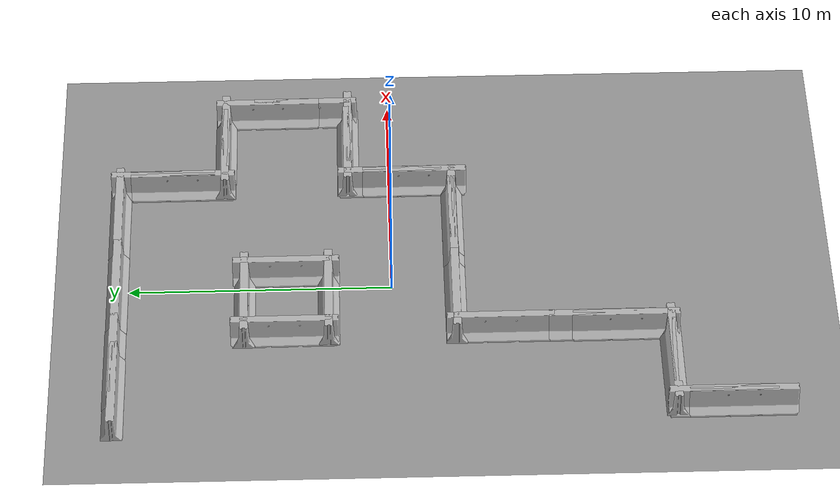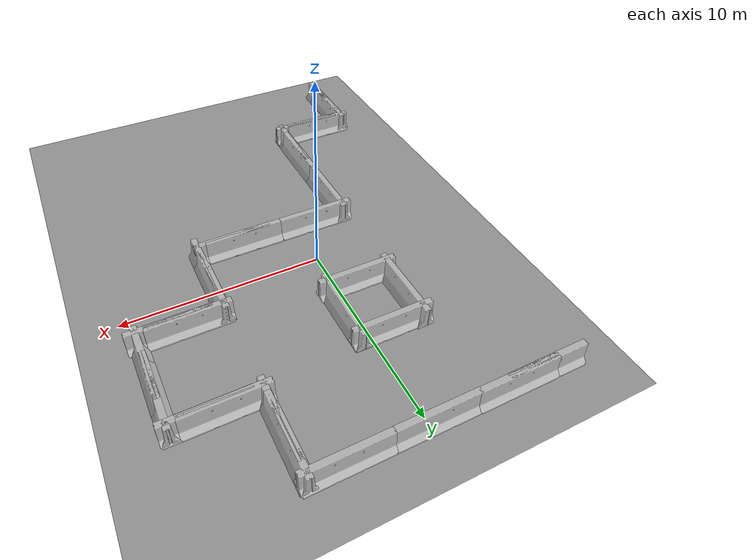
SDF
<sdf version="1.6">
 <world name="default">
  <model name="ground_plane_0">
   <static>1</static>
   <link name="link">
    <collision name="collision">
     <geometry><plane><normal>0 0 1</normal><size>100 100</size></plane></geometry>
     <surface><friction><ode><mu>100</mu><mu2>50</mu2></ode></friction></surface>
    </collision>
    <visual name="visual">
     <cast_shadows>0</cast_shadows>
     <geometry><plane><normal>0 0 1</normal><size>100 100</size></plane></geometry>
     <material>
      <script><uri>file://media/materials/scripts/gazebo.material</uri><name>Gazebo/Grey</name></script>
     </material>
    </visual>
    <velocity_decay><linear>0</linear><angular>0</angular></velocity_decay>
   </link>
   <pose>0.497681 0 0 0 -0 0</pose>
  </model>
  <model name="jersey_barrier_0">
   <static>1</static>
   <link name="link">
    <visual name="visual">
     <geometry>
      <mesh><uri>model://jersey_barrier/meshes/jersey_barrier.dae</uri><scale>1 1 1</scale></mesh>
     </geometry>
    </visual>
    <collision name="upright">
     <pose>0 0 0.5715 0 -0 0</pose>
     <geometry><box><size>4.06542 0.3063 1.143</size></box></geometry>
    </collision>
    <collision name="base">
     <pose>0 0 0.032258 0 -0 0</pose>
     <geometry><box><size>4.06542 0.8107 0.064516</size></box></geometry>
    </collision>
    <collision name="base2">
     <pose>0 0 0.1 0 -0 0</pose>
     <geometry><box><size>4.06542 0.65 0.1</size></box></geometry>
    </collision>
    <collision name="base3">
     <pose>0 0 0.2 0 -0 0</pose>
     <geometry><box><size>4.06542 0.5 0.1</size></box></geometry>
    </collision>
    <collision name="left-angle">
     <pose>0 -0.224 0.2401 0.9 -0 0</pose>
     <geometry><box><size>4.06542 0.5 0.064516</size></box></geometry>
    </collision>
    <collision name="right-angle">
     <pose>0 0.224 0.2401 -0.9 0 0</pose>
     <geometry><box><size>4.06542 0.5 0.064516</size></box></geometry>
    </collision>
   </link>
   <pose>-1.02794 -2.40419 0 0 -0 0</pose>
  </model>
  <model name="jersey_barrier_0_clone">
   <static>1</static>
   <link name="link">
    <visual name="visual">
     <geometry>
      <mesh><uri>model://jersey_barrier/meshes/jersey_barrier.dae</uri><scale>1 1 1</scale></mesh>
     </geometry>
    </visual>
    <collision name="upright">
     <pose>0 0 0.5715 0 -0 0</pose>
     <geometry><box><size>4.06542 0.3063 1.143</size></box></geometry>
    </collision>
    <collision name="base">
     <pose>0 0 0.032258 0 -0 0</pose>
     <geometry><box><size>4.06542 0.8107 0.064516</size></box></geometry>
    </collision>
    <collision name="base2">
     <pose>0 0 0.1 0 -0 0</pose>
     <geometry><box><size>4.06542 0.65 0.1</size></box></geometry>
    </collision>
    <collision name="base3">
     <pose>0 0 0.2 0 -0 0</pose>
     <geometry><box><size>4.06542 0.5 0.1</size></box></geometry>
    </collision>
    <collision name="left-angle">
     <pose>0 -0.224 0.2401 0.9 -0 0</pose>
     <geometry><box><size>4.06542 0.5 0.064516</size></box></geometry>
    </collision>
    <collision name="right-angle">
     <pose>0 0.224 0.2401 -0.9 0 0</pose>
     <geometry><box><size>4.06542 0.5 0.064516</size></box></geometry>
    </collision>
   </link>
   <pose>-0.985005 2.41708 0 0 -0 0</pose>
  </model>
  <model name="jersey_barrier_0_clone_0">
   <static>1</static>
   <link name="link">
    <visual name="visual">
     <geometry>
      <mesh><uri>model://jersey_barrier/meshes/jersey_barrier.dae</uri><scale>1 1 1</scale></mesh>
     </geometry>
    </visual>
    <collision name="upright">
     <pose>0 0 0.5715 0 -0 0</pose>
     <geometry><box><size>4.06542 0.3063 1.143</size></box></geometry>
    </collision>
    <collision name="base">
     <pose>0 0 0.032258 0 -0 0</pose>
     <geometry><box><size>4.06542 0.8107 0.064516</size></box></geometry>
    </collision>
    <collision name="base2">
     <pose>0 0 0.1 0 -0 0</pose>
     <geometry><box><size>4.06542 0.65 0.1</size></box></geometry>
    </collision>
    <collision name="base3">
     <pose>0 0 0.2 0 -0 0</pose>
     <geometry><box><size>4.06542 0.5 0.1</size></box></geometry>
    </collision>
    <collision name="left-angle">
     <pose>0 -0.224 0.2401 0.9 -0 0</pose>
     <geometry><box><size>4.06542 0.5 0.064516</size></box></geometry>
    </collision>
    <collision name="right-angle">
     <pose>0 0.224 0.2401 -0.9 0 0</pose>
     <geometry><box><size>4.06542 0.5 0.064516</size></box></geometry>
    </collision>
   </link>
   <pose>2.97453 -2.40474 0 0 -0 0</pose>
  </model>
  <model name="jersey_barrier_0_clone_1">
   <static>1</static>
   <link name="link">
    <visual name="visual">
     <geometry>
      <mesh><uri>model://jersey_barrier/meshes/jersey_barrier.dae</uri><scale>1 1 1</scale></mesh>
     </geometry>
    </visual>
    <collision name="upright">
     <pose>0 0 0.5715 0 -0 0</pose>
     <geometry><box><size>4.06542 0.3063 1.143</size></box></geometry>
    </collision>
    <collision name="base">
     <pose>0 0 0.032258 0 -0 0</pose>
     <geometry><box><size>4.06542 0.8107 0.064516</size></box></geometry>
    </collision>
    <collision name="base2">
     <pose>0 0 0.1 0 -0 0</pose>
     <geometry><box><size>4.06542 0.65 0.1</size></box></geometry>
    </collision>
    <collision name="base3">
     <pose>0 0 0.2 0 -0 0</pose>
     <geometry><box><size>4.06542 0.5 0.1</size></box></geometry>
    </collision>
    <collision name="left-angle">
     <pose>0 -0.224 0.2401 0.9 -0 0</pose>
     <geometry><box><size>4.06542 0.5 0.064516</size></box></geometry>
    </collision>
    <collision name="right-angle">
     <pose>0 0.224 0.2401 -0.9 0 0</pose>
     <geometry><box><size>4.06542 0.5 0.064516</size></box></geometry>
    </collision>
   </link>
   <pose>-4.19882 -10.4385 0 0 -0 0</pose>
  </model>
  <model name="jersey_barrier_0_clone_2">
   <static>1</static>
   <link name="link">
    <visual name="visual">
     <geometry>
      <mesh><uri>model://jersey_barrier/meshes/jersey_barrier.dae</uri><scale>1 1 1</scale></mesh>
     </geometry>
    </visual>
    <collision name="upright">
     <pose>0 0 0.5715 0 -0 0</pose>
     <geometry><box><size>4.06542 0.3063 1.143</size></box></geometry>
    </collision>
    <collision name="base">
     <pose>0 0 0.032258 0 -0 0</pose>
     <geometry><box><size>4.06542 0.8107 0.064516</size></box></geometry>
    </collision>
    <collision name="base2">
     <pose>0 0 0.1 0 -0 0</pose>
     <geometry><box><size>4.06542 0.65 0.1</size></box></geometry>
    </collision>
    <collision name="base3">
     <pose>0 0 0.2 0 -0 0</pose>
     <geometry><box><size>4.06542 0.5 0.1</size></box></geometry>
    </collision>
    <collision name="left-angle">
     <pose>0 -0.224 0.2401 0.9 -0 0</pose>
     <geometry><box><size>4.06542 0.5 0.064516</size></box></geometry>
    </collision>
    <collision name="right-angle">
     <pose>0 0.224 0.2401 -0.9 0 0</pose>
     <geometry><box><size>4.06542 0.5 0.064516</size></box></geometry>
    </collision>
   </link>
   <pose>-2.56744 -7.85074 0 0 -0 1.57549</pose>
  </model>
  <model name="jersey_barrier_0_clone_2_clone">
   <static>1</static>
   <link name="link">
    <visual name="visual">
     <geometry>
      <mesh><uri>model://jersey_barrier/meshes/jersey_barrier.dae</uri><scale>1 1 1</scale></mesh>
     </geometry>
    </visual>
    <collision name="upright">
     <pose>0 0 0.5715 0 -0 0</pose>
     <geometry><box><size>4.06542 0.3063 1.143</size></box></geometry>
    </collision>
    <collision name="base">
     <pose>0 0 0.032258 0 -0 0</pose>
     <geometry><box><size>4.06542 0.8107 0.064516</size></box></geometry>
    </collision>
    <collision name="base2">
     <pose>0 0 0.1 0 -0 0</pose>
     <geometry><box><size>4.06542 0.65 0.1</size></box></geometry>
    </collision>
    <collision name="base3">
     <pose>0 0 0.2 0 -0 0</pose>
     <geometry><box><size>4.06542 0.5 0.1</size></box></geometry>
    </collision>
    <collision name="left-angle">
     <pose>0 -0.224 0.2401 0.9 -0 0</pose>
     <geometry><box><size>4.06542 0.5 0.064516</size></box></geometry>
    </collision>
    <collision name="right-angle">
     <pose>0 0.224 0.2401 -0.9 0 0</pose>
     <geometry><box><size>4.06542 0.5 0.064516</size></box></geometry>
    </collision>
   </link>
   <pose>0.560996 4.02797 0 0 -0 1.57549</pose>
  </model>
  <model name="jersey_barrier_0_clone_2_clone_0">
   <static>1</static>
   <link name="link">
    <visual name="visual">
     <geometry>
      <mesh><uri>model://jersey_barrier/meshes/jersey_barrier.dae</uri><scale>1 1 1</scale></mesh>
     </geometry>
    </visual>
    <collision name="upright">
     <pose>0 0 0.5715 0 -0 0</pose>
     <geometry><box><size>4.06542 0.3063 1.143</size></box></geometry>
    </collision>
    <collision name="base">
     <pose>0 0 0.032258 0 -0 0</pose>
     <geometry><box><size>4.06542 0.8107 0.064516</size></box></geometry>
    </collision>
    <collision name="base2">
     <pose>0 0 0.1 0 -0 0</pose>
     <geometry><box><size>4.06542 0.65 0.1</size></box></geometry>
    </collision>
    <collision name="base3">
     <pose>0 0 0.2 0 -0 0</pose>
     <geometry><box><size>4.06542 0.5 0.1</size></box></geometry>
    </collision>
    <collision name="left-angle">
     <pose>0 -0.224 0.2401 0.9 -0 0</pose>
     <geometry><box><size>4.06542 0.5 0.064516</size></box></geometry>
    </collision>
    <collision name="right-angle">
     <pose>0 0.224 0.2401 -0.9 0 0</pose>
     <geometry><box><size>4.06542 0.5 0.064516</size></box></geometry>
    </collision>
   </link>
   <pose>5.40975 -0.96421 0 0 -0 1.57549</pose>
  </model>
  <model name="jersey_barrier_0_clone_1_clone">
   <static>1</static>
   <link name="link">
    <visual name="visual">
     <geometry>
      <mesh><uri>model://jersey_barrier/meshes/jersey_barrier.dae</uri><scale>1 1 1</scale></mesh>
     </geometry>
    </visual>
    <collision name="upright">
     <pose>0 0 0.5715 0 -0 0</pose>
     <geometry><box><size>4.06542 0.3063 1.143</size></box></geometry>
    </collision>
    <collision name="base">
     <pose>0 0 0.032258 0 -0 0</pose>
     <geometry><box><size>4.06542 0.8107 0.064516</size></box></geometry>
    </collision>
    <collision name="base2">
     <pose>0 0 0.1 0 -0 0</pose>
     <geometry><box><size>4.06542 0.65 0.1</size></box></geometry>
    </collision>
    <collision name="base3">
     <pose>0 0 0.2 0 -0 0</pose>
     <geometry><box><size>4.06542 0.5 0.1</size></box></geometry>
    </collision>
    <collision name="left-angle">
     <pose>0 -0.224 0.2401 0.9 -0 0</pose>
     <geometry><box><size>4.06542 0.5 0.064516</size></box></geometry>
    </collision>
    <collision name="right-angle">
     <pose>0 0.224 0.2401 -0.9 0 0</pose>
     <geometry><box><size>4.06542 0.5 0.064516</size></box></geometry>
    </collision>
   </link>
   <pose>-1.05227 5.60536 0 0 -0 0</pose>
  </model>
  <model name="jersey_barrier_0_clone_2_clone_3_clone">
   <static>1</static>
   <link name="link">
    <visual name="visual">
     <geometry>
      <mesh><uri>model://jersey_barrier/meshes/jersey_barrier.dae</uri><scale>1 1 1</scale></mesh>
     </geometry>
    </visual>
    <collision name="upright">
     <pose>0 0 0.5715 0 -0 0</pose>
     <geometry><box><size>4.06542 0.3063 1.143</size></box></geometry>
    </collision>
    <collision name="base">
     <pose>0 0 0.032258 0 -0 0</pose>
     <geometry><box><size>4.06542 0.8107 0.064516</size></box></geometry>
    </collision>
    <collision name="base2">
     <pose>0 0 0.1 0 -0 0</pose>
     <geometry><box><size>4.06542 0.65 0.1</size></box></geometry>
    </collision>
    <collision name="base3">
     <pose>0 0 0.2 0 -0 0</pose>
     <geometry><box><size>4.06542 0.5 0.1</size></box></geometry>
    </collision>
    <collision name="left-angle">
     <pose>0 -0.224 0.2401 0.9 -0 0</pose>
     <geometry><box><size>4.06542 0.5 0.064516</size></box></geometry>
    </collision>
    <collision name="right-angle">
     <pose>0 0.224 0.2401 -0.9 0 0</pose>
     <geometry><box><size>4.06542 0.5 0.064516</size></box></geometry>
    </collision>
   </link>
   <pose>-2.59517 4.08417 0 0 -0 1.57549</pose>
  </model>
  <model name="jersey_barrier_0_clone_2_clone_3_clone_0">
   <static>1</static>
   <link name="link">
    <visual name="visual">
     <geometry>
      <mesh><uri>model://jersey_barrier/meshes/jersey_barrier.dae</uri><scale>1 1 1</scale></mesh>
     </geometry>
    </visual>
    <collision name="upright">
     <pose>0 0 0.5715 0 -0 0</pose>
     <geometry><box><size>4.06542 0.3063 1.143</size></box></geometry>
    </collision>
    <collision name="base">
     <pose>0 0 0.032258 0 -0 0</pose>
     <geometry><box><size>4.06542 0.8107 0.064516</size></box></geometry>
    </collision>
    <collision name="base2">
     <pose>0 0 0.1 0 -0 0</pose>
     <geometry><box><size>4.06542 0.65 0.1</size></box></geometry>
    </collision>
    <collision name="base3">
     <pose>0 0 0.2 0 -0 0</pose>
     <geometry><box><size>4.06542 0.5 0.1</size></box></geometry>
    </collision>
    <collision name="left-angle">
     <pose>0 -0.224 0.2401 0.9 -0 0</pose>
     <geometry><box><size>4.06542 0.5 0.064516</size></box></geometry>
    </collision>
    <collision name="right-angle">
     <pose>0 0.224 0.2401 -0.9 0 0</pose>
     <geometry><box><size>4.06542 0.5 0.064516</size></box></geometry>
    </collision>
   </link>
   <pose>5.37228 8.0404 0 0 -0 1.57549</pose>
  </model>
  <model name="jersey_barrier_0_clone_1_clone_0">
   <static>1</static>
   <link name="link">
    <visual name="visual">
     <geometry>
      <mesh><uri>model://jersey_barrier/meshes/jersey_barrier.dae</uri><scale>1 1 1</scale></mesh>
     </geometry>
    </visual>
    <collision name="upright">
     <pose>0 0 0.5715 0 -0 0</pose>
     <geometry><box><size>4.06542 0.3063 1.143</size></box></geometry>
    </collision>
    <collision name="base">
     <pose>0 0 0.032258 0 -0 0</pose>
     <geometry><box><size>4.06542 0.8107 0.064516</size></box></geometry>
    </collision>
    <collision name="base2">
     <pose>0 0 0.1 0 -0 0</pose>
     <geometry><box><size>4.06542 0.65 0.1</size></box></geometry>
    </collision>
    <collision name="base3">
     <pose>0 0 0.2 0 -0 0</pose>
     <geometry><box><size>4.06542 0.5 0.1</size></box></geometry>
    </collision>
    <collision name="left-angle">
     <pose>0 -0.224 0.2401 0.9 -0 0</pose>
     <geometry><box><size>4.06542 0.5 0.064516</size></box></geometry>
    </collision>
    <collision name="right-angle">
     <pose>0 0.224 0.2401 -0.9 0 0</pose>
     <geometry><box><size>4.06542 0.5 0.064516</size></box></geometry>
    </collision>
   </link>
   <pose>3.72097 10.4565 0 0 -0 0</pose>
  </model>
  <model name="jersey_barrier_0_clone_1_clone_1">
   <static>1</static>
   <link name="link">
    <visual name="visual">
     <geometry>
      <mesh><uri>model://jersey_barrier/meshes/jersey_barrier.dae</uri><scale>1 1 1</scale></mesh>
     </geometry>
    </visual>
    <collision name="upright">
     <pose>0 0 0.5715 0 -0 0</pose>
     <geometry><box><size>4.06542 0.3063 1.143</size></box></geometry>
    </collision>
    <collision name="base">
     <pose>0 0 0.032258 0 -0 0</pose>
     <geometry><box><size>4.06542 0.8107 0.064516</size></box></geometry>
    </collision>
    <collision name="base2">
     <pose>0 0 0.1 0 -0 0</pose>
     <geometry><box><size>4.06542 0.65 0.1</size></box></geometry>
    </collision>
    <collision name="base3">
     <pose>0 0 0.2 0 -0 0</pose>
     <geometry><box><size>4.06542 0.5 0.1</size></box></geometry>
    </collision>
    <collision name="left-angle">
     <pose>0 -0.224 0.2401 0.9 -0 0</pose>
     <geometry><box><size>4.06542 0.5 0.064516</size></box></geometry>
    </collision>
    <collision name="right-angle">
     <pose>0 0.224 0.2401 -0.9 0 0</pose>
     <geometry><box><size>4.06542 0.5 0.064516</size></box></geometry>
    </collision>
   </link>
   <pose>-0.226344 10.4493 0 0 -0 0</pose>
  </model>
  <model name="jersey_barrier_0_clone_1_clone_2">
   <static>1</static>
   <link name="link">
    <visual name="visual">
     <geometry>
      <mesh><uri>model://jersey_barrier/meshes/jersey_barrier.dae</uri><scale>1 1 1</scale></mesh>
     </geometry>
    </visual>
    <collision name="upright">
     <pose>0 0 0.5715 0 -0 0</pose>
     <geometry><box><size>4.06542 0.3063 1.143</size></box></geometry>
    </collision>
    <collision name="base">
     <pose>0 0 0.032258 0 -0 0</pose>
     <geometry><box><size>4.06542 0.8107 0.064516</size></box></geometry>
    </collision>
    <collision name="base2">
     <pose>0 0 0.1 0 -0 0</pose>
     <geometry><box><size>4.06542 0.65 0.1</size></box></geometry>
    </collision>
    <collision name="base3">
     <pose>0 0 0.2 0 -0 0</pose>
     <geometry><box><size>4.06542 0.5 0.1</size></box></geometry>
    </collision>
    <collision name="left-angle">
     <pose>0 -0.224 0.2401 0.9 -0 0</pose>
     <geometry><box><size>4.06542 0.5 0.064516</size></box></geometry>
    </collision>
    <collision name="right-angle">
     <pose>0 0.224 0.2401 -0.9 0 0</pose>
     <geometry><box><size>4.06542 0.5 0.064516</size></box></geometry>
    </collision>
   </link>
   <pose>-4.14371 10.4629 0 0 -0 0</pose>
  </model>
  <model name="jersey_barrier_0_clone_3">
   <static>1</static>
   <link name="link">
    <visual name="visual">
     <geometry>
      <mesh><uri>model://jersey_barrier/meshes/jersey_barrier.dae</uri><scale>1 1 1</scale></mesh>
     </geometry>
    </visual>
    <collision name="upright">
     <pose>0 0 0.5715 0 -0 0</pose>
     <geometry><box><size>4.06542 0.3063 1.143</size></box></geometry>
    </collision>
    <collision name="base">
     <pose>0 0 0.032258 0 -0 0</pose>
     <geometry><box><size>4.06542 0.8107 0.064516</size></box></geometry>
    </collision>
    <collision name="base2">
     <pose>0 0 0.1 0 -0 0</pose>
     <geometry><box><size>4.06542 0.65 0.1</size></box></geometry>
    </collision>
    <collision name="base3">
     <pose>0 0 0.2 0 -0 0</pose>
     <geometry><box><size>4.06542 0.5 0.1</size></box></geometry>
    </collision>
    <collision name="left-angle">
     <pose>0 -0.224 0.2401 0.9 -0 0</pose>
     <geometry><box><size>4.06542 0.5 0.064516</size></box></geometry>
    </collision>
    <collision name="right-angle">
     <pose>0 0.224 0.2401 -0.9 0 0</pose>
     <geometry><box><size>4.06542 0.5 0.064516</size></box></geometry>
    </collision>
   </link>
   <pose>-5.61097 10.4434 0 0 -0 0</pose>
  </model>
  <model name="jersey_barrier_0_clone_1_clone_3">
   <static>1</static>
   <link name="link">
    <visual name="visual">
     <geometry>
      <mesh><uri>model://jersey_barrier/meshes/jersey_barrier.dae</uri><scale>1 1 1</scale></mesh>
     </geometry>
    </visual>
    <collision name="upright">
     <pose>0 0 0.5715 0 -0 0</pose>
     <geometry><box><size>4.06542 0.3063 1.143</size></box></geometry>
    </collision>
    <collision name="base">
     <pose>0 0 0.032258 0 -0 0</pose>
     <geometry><box><size>4.06542 0.8107 0.064516</size></box></geometry>
    </collision>
    <collision name="base2">
     <pose>0 0 0.1 0 -0 0</pose>
     <geometry><box><size>4.06542 0.65 0.1</size></box></geometry>
    </collision>
    <collision name="base3">
     <pose>0 0 0.2 0 -0 0</pose>
     <geometry><box><size>4.06542 0.5 0.1</size></box></geometry>
    </collision>
    <collision name="left-angle">
     <pose>0 -0.224 0.2401 0.9 -0 0</pose>
     <geometry><box><size>4.06542 0.5 0.064516</size></box></geometry>
    </collision>
    <collision name="right-angle">
     <pose>0 0.224 0.2401 -0.9 0 0</pose>
     <geometry><box><size>4.06542 0.5 0.064516</size></box></geometry>
    </collision>
   </link>
   <pose>3.57274 -2.41009 0 0 -0 0</pose>
  </model>
  <model name="jersey_barrier_0_clone_2_clone_3_clone_2">
   <static>1</static>
   <link name="link">
    <visual name="visual">
     <geometry>
      <mesh><uri>model://jersey_barrier/meshes/jersey_barrier.dae</uri><scale>1 1 1</scale></mesh>
     </geometry>
    </visual>
    <collision name="upright">
     <pose>0 0 0.5715 0 -0 0</pose>
     <geometry><box><size>4.06542 0.3063 1.143</size></box></geometry>
    </collision>
    <collision name="base">
     <pose>0 0 0.032258 0 -0 0</pose>
     <geometry><box><size>4.06542 0.8107 0.064516</size></box></geometry>
    </collision>
    <collision name="base2">
     <pose>0 0 0.1 0 -0 0</pose>
     <geometry><box><size>4.06542 0.65 0.1</size></box></geometry>
    </collision>
    <collision name="base3">
     <pose>0 0 0.2 0 -0 0</pose>
     <geometry><box><size>4.06542 0.5 0.1</size></box></geometry>
    </collision>
    <collision name="left-angle">
     <pose>0 -0.224 0.2401 0.9 -0 0</pose>
     <geometry><box><size>4.06542 0.5 0.064516</size></box></geometry>
    </collision>
    <collision name="right-angle">
     <pose>0 0.224 0.2401 -0.9 0 0</pose>
     <geometry><box><size>4.06542 0.5 0.064516</size></box></geometry>
    </collision>
   </link>
   <pose>5.37768 8.78365 0 0 -0 1.57549</pose>
  </model>
  <model name="jersey_barrier_0_clone_2_clone_5">
   <static>1</static>
   <link name="link">
    <visual name="visual">
     <geometry>
      <mesh><uri>model://jersey_barrier/meshes/jersey_barrier.dae</uri><scale>1 1 1</scale></mesh>
     </geometry>
    </visual>
    <collision name="upright">
     <pose>0 0 0.5715 0 -0 0</pose>
     <geometry><box><size>4.06542 0.3063 1.143</size></box></geometry>
    </collision>
    <collision name="base">
     <pose>0 0 0.032258 0 -0 0</pose>
     <geometry><box><size>4.06542 0.8107 0.064516</size></box></geometry>
    </collision>
    <collision name="base2">
     <pose>0 0 0.1 0 -0 0</pose>
     <geometry><box><size>4.06542 0.65 0.1</size></box></geometry>
    </collision>
    <collision name="base3">
     <pose>0 0 0.2 0 -0 0</pose>
     <geometry><box><size>4.06542 0.5 0.1</size></box></geometry>
    </collision>
    <collision name="left-angle">
     <pose>0 -0.224 0.2401 0.9 -0 0</pose>
     <geometry><box><size>4.06542 0.5 0.064516</size></box></geometry>
    </collision>
    <collision name="right-angle">
     <pose>0 0.224 0.2401 -0.9 0 0</pose>
     <geometry><box><size>4.06542 0.5 0.064516</size></box></geometry>
    </collision>
   </link>
   <pose>-2.57606 -4.04265 0 0 -0 1.57549</pose>
  </model>
  <model name="jersey_barrier_0_clone_2_clone_6">
   <static>1</static>
   <link name="link">
    <visual name="visual">
     <geometry>
      <mesh><uri>model://jersey_barrier/meshes/jersey_barrier.dae</uri><scale>1 1 1</scale></mesh>
     </geometry>
    </visual>
    <collision name="upright">
     <pose>0 0 0.5715 0 -0 0</pose>
     <geometry><box><size>4.06542 0.3063 1.143</size></box></geometry>
    </collision>
    <collision name="base">
     <pose>0 0 0.032258 0 -0 0</pose>
     <geometry><box><size>4.06542 0.8107 0.064516</size></box></geometry>
    </collision>
    <collision name="base2">
     <pose>0 0 0.1 0 -0 0</pose>
     <geometry><box><size>4.06542 0.65 0.1</size></box></geometry>
    </collision>
    <collision name="base3">
     <pose>0 0 0.2 0 -0 0</pose>
     <geometry><box><size>4.06542 0.5 0.1</size></box></geometry>
    </collision>
    <collision name="left-angle">
     <pose>0 -0.224 0.2401 0.9 -0 0</pose>
     <geometry><box><size>4.06542 0.5 0.064516</size></box></geometry>
    </collision>
    <collision name="right-angle">
     <pose>0 0.224 0.2401 -0.9 0 0</pose>
     <geometry><box><size>4.06542 0.5 0.064516</size></box></geometry>
    </collision>
   </link>
   <pose>-2.58513 -8.74482 0 0 -0 1.57549</pose>
  </model>
  <model name="jersey_barrier_0_clone_4">
   <static>1</static>
   <link name="link">
    <visual name="visual">
     <geometry>
      <mesh><uri>model://jersey_barrier/meshes/jersey_barrier.dae</uri><scale>1 1 1</scale></mesh>
     </geometry>
    </visual>
    <collision name="upright">
     <pose>0 0 0.5715 0 -0 0</pose>
     <geometry><box><size>4.06542 0.3063 1.143</size></box></geometry>
    </collision>
    <collision name="base">
     <pose>0 0 0.032258 0 -0 0</pose>
     <geometry><box><size>4.06542 0.8107 0.064516</size></box></geometry>
    </collision>
    <collision name="base2">
     <pose>0 0 0.1 0 -0 0</pose>
     <geometry><box><size>4.06542 0.65 0.1</size></box></geometry>
    </collision>
    <collision name="base3">
     <pose>0 0 0.2 0 -0 0</pose>
     <geometry><box><size>4.06542 0.5 0.1</size></box></geometry>
    </collision>
    <collision name="left-angle">
     <pose>0 -0.224 0.2401 0.9 -0 0</pose>
     <geometry><box><size>4.06542 0.5 0.064516</size></box></geometry>
    </collision>
    <collision name="right-angle">
     <pose>0 0.224 0.2401 -0.9 0 0</pose>
     <geometry><box><size>4.06542 0.5 0.064516</size></box></geometry>
    </collision>
   </link>
   <pose>7.04924 1.61521 0 0 -0 0</pose>
  </model>
  <model name="jersey_barrier_0_clone_5">
   <static>1</static>
   <link name="link">
    <visual name="visual">
     <geometry>
      <mesh><uri>model://jersey_barrier/meshes/jersey_barrier.dae</uri><scale>1 1 1</scale></mesh>
     </geometry>
    </visual>
    <collision name="upright">
     <pose>0 0 0.5715 0 -0 0</pose>
     <geometry><box><size>4.06542 0.3063 1.143</size></box></geometry>
    </collision>
    <collision name="base">
     <pose>0 0 0.032258 0 -0 0</pose>
     <geometry><box><size>4.06542 0.8107 0.064516</size></box></geometry>
    </collision>
    <collision name="base2">
     <pose>0 0 0.1 0 -0 0</pose>
     <geometry><box><size>4.06542 0.65 0.1</size></box></geometry>
    </collision>
    <collision name="base3">
     <pose>0 0 0.2 0 -0 0</pose>
     <geometry><box><size>4.06542 0.5 0.1</size></box></geometry>
    </collision>
    <collision name="left-angle">
     <pose>0 -0.224 0.2401 0.9 -0 0</pose>
     <geometry><box><size>4.06542 0.5 0.064516</size></box></geometry>
    </collision>
    <collision name="right-angle">
     <pose>0 0.224 0.2401 -0.9 0 0</pose>
     <geometry><box><size>4.06542 0.5 0.064516</size></box></geometry>
    </collision>
   </link>
   <pose>6.9975 6.39661 0 0 -0 0</pose>
  </model>
  <model name="jersey_barrier_0_clone_2_clone_0_clone">
   <static>1</static>
   <link name="link">
    <visual name="visual">
     <geometry>
      <mesh><uri>model://jersey_barrier/meshes/jersey_barrier.dae</uri><scale>1 1 1</scale></mesh>
     </geometry>
    </visual>
    <collision name="upright">
     <pose>0 0 0.5715 0 -0 0</pose>
     <geometry><box><size>4.06542 0.3063 1.143</size></box></geometry>
    </collision>
    <collision name="base">
     <pose>0 0 0.032258 0 -0 0</pose>
     <geometry><box><size>4.06542 0.8107 0.064516</size></box></geometry>
    </collision>
    <collision name="base2">
     <pose>0 0 0.1 0 -0 0</pose>
     <geometry><box><size>4.06542 0.65 0.1</size></box></geometry>
    </collision>
    <collision name="base3">
     <pose>0 0 0.2 0 -0 0</pose>
     <geometry><box><size>4.06542 0.5 0.1</size></box></geometry>
    </collision>
    <collision name="left-angle">
     <pose>0 -0.224 0.2401 0.9 -0 0</pose>
     <geometry><box><size>4.06542 0.5 0.064516</size></box></geometry>
    </collision>
    <collision name="right-angle">
     <pose>0 0.224 0.2401 -0.9 0 0</pose>
     <geometry><box><size>4.06542 0.5 0.064516</size></box></geometry>
    </collision>
   </link>
   <pose>5.41249 -0.032329 0 0 -0 1.57549</pose>
  </model>
  <model name="jersey_barrier_0_clone_2_clone_0_clone_0">
   <static>1</static>
   <link name="link">
    <visual name="visual">
     <geometry>
      <mesh><uri>model://jersey_barrier/meshes/jersey_barrier.dae</uri><scale>1 1 1</scale></mesh>
     </geometry>
    </visual>
    <collision name="upright">
     <pose>0 0 0.5715 0 -0 0</pose>
     <geometry><box><size>4.06542 0.3063 1.143</size></box></geometry>
    </collision>
    <collision name="base">
     <pose>0 0 0.032258 0 -0 0</pose>
     <geometry><box><size>4.06542 0.8107 0.064516</size></box></geometry>
    </collision>
    <collision name="base2">
     <pose>0 0 0.1 0 -0 0</pose>
     <geometry><box><size>4.06542 0.65 0.1</size></box></geometry>
    </collision>
    <collision name="base3">
     <pose>0 0 0.2 0 -0 0</pose>
     <geometry><box><size>4.06542 0.5 0.1</size></box></geometry>
    </collision>
    <collision name="left-angle">
     <pose>0 -0.224 0.2401 0.9 -0 0</pose>
     <geometry><box><size>4.06542 0.5 0.064516</size></box></geometry>
    </collision>
    <collision name="right-angle">
     <pose>0 0.224 0.2401 -0.9 0 0</pose>
     <geometry><box><size>4.06542 0.5 0.064516</size></box></geometry>
    </collision>
   </link>
   <pose>9.41093 3.25851 0 0 -0 1.57549</pose>
  </model>
  <model name="jersey_barrier_0_clone_2_clone_0_clone_1">
   <static>1</static>
   <link name="link">
    <visual name="visual">
     <geometry>
      <mesh><uri>model://jersey_barrier/meshes/jersey_barrier.dae</uri><scale>1 1 1</scale></mesh>
     </geometry>
    </visual>
    <collision name="upright">
     <pose>0 0 0.5715 0 -0 0</pose>
     <geometry><box><size>4.06542 0.3063 1.143</size></box></geometry>
    </collision>
    <collision name="base">
     <pose>0 0 0.032258 0 -0 0</pose>
     <geometry><box><size>4.06542 0.8107 0.064516</size></box></geometry>
    </collision>
    <collision name="base2">
     <pose>0 0 0.1 0 -0 0</pose>
     <geometry><box><size>4.06542 0.65 0.1</size></box></geometry>
    </collision>
    <collision name="base3">
     <pose>0 0 0.2 0 -0 0</pose>
     <geometry><box><size>4.06542 0.5 0.1</size></box></geometry>
    </collision>
    <collision name="left-angle">
     <pose>0 -0.224 0.2401 0.9 -0 0</pose>
     <geometry><box><size>4.06542 0.5 0.064516</size></box></geometry>
    </collision>
    <collision name="right-angle">
     <pose>0 0.224 0.2401 -0.9 0 0</pose>
     <geometry><box><size>4.06542 0.5 0.064516</size></box></geometry>
    </collision>
   </link>
   <pose>9.39212 4.73145 0 0 -0 1.57549</pose>
  </model>
  <model name="jersey_barrier_0_clone_5_clone">
   <static>1</static>
   <link name="link">
    <visual name="visual">
     <geometry>
      <mesh><uri>model://jersey_barrier/meshes/jersey_barrier.dae</uri><scale>1 1 1</scale></mesh>
     </geometry>
    </visual>
    <collision name="upright">
     <pose>0 0 0.5715 0 -0 0</pose>
     <geometry><box><size>4.06542 0.3063 1.143</size></box></geometry>
    </collision>
    <collision name="base">
     <pose>0 0 0.032258 0 -0 0</pose>
     <geometry><box><size>4.06542 0.8107 0.064516</size></box></geometry>
    </collision>
    <collision name="base2">
     <pose>0 0 0.1 0 -0 0</pose>
     <geometry><box><size>4.06542 0.65 0.1</size></box></geometry>
    </collision>
    <collision name="base3">
     <pose>0 0 0.2 0 -0 0</pose>
     <geometry><box><size>4.06542 0.5 0.1</size></box></geometry>
    </collision>
    <collision name="left-angle">
     <pose>0 -0.224 0.2401 0.9 -0 0</pose>
     <geometry><box><size>4.06542 0.5 0.064516</size></box></geometry>
    </collision>
    <collision name="right-angle">
     <pose>0 0.224 0.2401 -0.9 0 0</pose>
     <geometry><box><size>4.06542 0.5 0.064516</size></box></geometry>
    </collision>
   </link>
   <pose>7.77238 6.38245 0 0 -0 0</pose>
  </model>
  <model name="jersey_barrier_0_clone_5_clone_0">
   <static>1</static>
   <link name="link">
    <visual name="visual">
     <geometry>
      <mesh><uri>model://jersey_barrier/meshes/jersey_barrier.dae</uri><scale>1 1 1</scale></mesh>
     </geometry>
    </visual>
    <collision name="upright">
     <pose>0 0 0.5715 0 -0 0</pose>
     <geometry><box><size>4.06542 0.3063 1.143</size></box></geometry>
    </collision>
    <collision name="base">
     <pose>0 0 0.032258 0 -0 0</pose>
     <geometry><box><size>4.06542 0.8107 0.064516</size></box></geometry>
    </collision>
    <collision name="base2">
     <pose>0 0 0.1 0 -0 0</pose>
     <geometry><box><size>4.06542 0.65 0.1</size></box></geometry>
    </collision>
    <collision name="base3">
     <pose>0 0 0.2 0 -0 0</pose>
     <geometry><box><size>4.06542 0.5 0.1</size></box></geometry>
    </collision>
    <collision name="left-angle">
     <pose>0 -0.224 0.2401 0.9 -0 0</pose>
     <geometry><box><size>4.06542 0.5 0.064516</size></box></geometry>
    </collision>
    <collision name="right-angle">
     <pose>0 0.224 0.2401 -0.9 0 0</pose>
     <geometry><box><size>4.06542 0.5 0.064516</size></box></geometry>
    </collision>
   </link>
   <pose>7.90888 1.57973 0 0 -0 0</pose>
  </model>
  <model name="jersey_barrier_0_clone_2_clone_6_clone_0">
   <static>1</static>
   <link name="link">
    <visual name="visual">
     <geometry>
      <mesh><uri>model://jersey_barrier/meshes/jersey_barrier.dae</uri><scale>1 1 1</scale></mesh>
     </geometry>
    </visual>
    <collision name="upright">
     <pose>0 0 0.5715 0 -0 0</pose>
     <geometry><box><size>4.06542 0.3063 1.143</size></box></geometry>
    </collision>
    <collision name="base">
     <pose>0 0 0.032258 0 -0 0</pose>
     <geometry><box><size>4.06542 0.8107 0.064516</size></box></geometry>
    </collision>
    <collision name="base2">
     <pose>0 0 0.1 0 -0 0</pose>
     <geometry><box><size>4.06542 0.65 0.1</size></box></geometry>
    </collision>
    <collision name="base3">
     <pose>0 0 0.2 0 -0 0</pose>
     <geometry><box><size>4.06542 0.5 0.1</size></box></geometry>
    </collision>
    <collision name="left-angle">
     <pose>0 -0.224 0.2401 0.9 -0 0</pose>
     <geometry><box><size>4.06542 0.5 0.064516</size></box></geometry>
    </collision>
    <collision name="right-angle">
     <pose>0 0.224 0.2401 -0.9 0 0</pose>
     <geometry><box><size>4.06542 0.5 0.064516</size></box></geometry>
    </collision>
   </link>
   <pose>-6.57792 -12.1068 0 0 -0 1.57549</pose>
  </model>
  <model name="jersey_barrier_0_clone_1_clone_11">
   <static>1</static>
   <link name="link">
    <visual name="visual">
     <geometry>
      <mesh><uri>model://jersey_barrier/meshes/jersey_barrier.dae</uri><scale>1 1 1</scale></mesh>
     </geometry>
    </visual>
    <collision name="upright">
     <pose>0 0 0.5715 0 -0 0</pose>
     <geometry><box><size>4.06542 0.3063 1.143</size></box></geometry>
    </collision>
    <collision name="base">
     <pose>0 0 0.032258 0 -0 0</pose>
     <geometry><box><size>4.06542 0.8107 0.064516</size></box></geometry>
    </collision>
    <collision name="base2">
     <pose>0 0 0.1 0 -0 0</pose>
     <geometry><box><size>4.06542 0.65 0.1</size></box></geometry>
    </collision>
    <collision name="base3">
     <pose>0 0 0.2 0 -0 0</pose>
     <geometry><box><size>4.06542 0.5 0.1</size></box></geometry>
    </collision>
    <collision name="left-angle">
     <pose>0 -0.224 0.2401 0.9 -0 0</pose>
     <geometry><box><size>4.06542 0.5 0.064516</size></box></geometry>
    </collision>
    <collision name="right-angle">
     <pose>0 0.224 0.2401 -0.9 0 0</pose>
     <geometry><box><size>4.06542 0.5 0.064516</size></box></geometry>
    </collision>
   </link>
   <pose>-4.93294 -10.426 0 0 -0 0</pose>
  </model>
  <model name="jersey_barrier_0_clone_2_clone_6_clone_clone_0">
   <static>1</static>
   <link name="link">
    <visual name="visual">
     <geometry>
      <mesh><uri>model://jersey_barrier/meshes/jersey_barrier.dae</uri><scale>1 1 1</scale></mesh>
     </geometry>
    </visual>
    <collision name="upright">
     <pose>0 0 0.5715 0 -0 0</pose>
     <geometry><box><size>4.06542 0.3063 1.143</size></box></geometry>
    </collision>
    <collision name="base">
     <pose>0 0 0.032258 0 -0 0</pose>
     <geometry><box><size>4.06542 0.8107 0.064516</size></box></geometry>
    </collision>
    <collision name="base2">
     <pose>0 0 0.1 0 -0 0</pose>
     <geometry><box><size>4.06542 0.65 0.1</size></box></geometry>
    </collision>
    <collision name="base3">
     <pose>0 0 0.2 0 -0 0</pose>
     <geometry><box><size>4.06542 0.5 0.1</size></box></geometry>
    </collision>
    <collision name="left-angle">
     <pose>0 -0.224 0.2401 0.9 -0 0</pose>
     <geometry><box><size>4.06542 0.5 0.064516</size></box></geometry>
    </collision>
    <collision name="right-angle">
     <pose>0 0.224 0.2401 -0.9 0 0</pose>
     <geometry><box><size>4.06542 0.5 0.064516</size></box></geometry>
    </collision>
   </link>
   <pose>-6.59156 -12.8391 0 0 -0 1.57549</pose>
  </model>
 </world>
</sdf>
